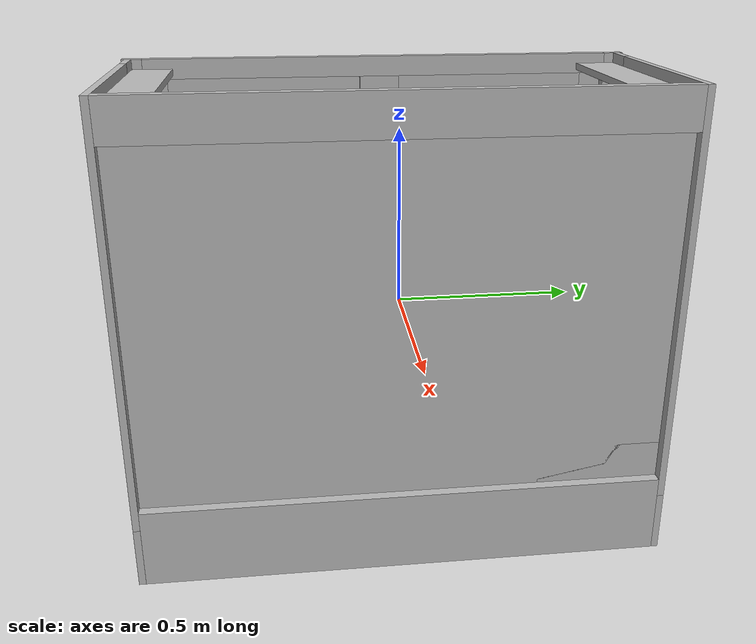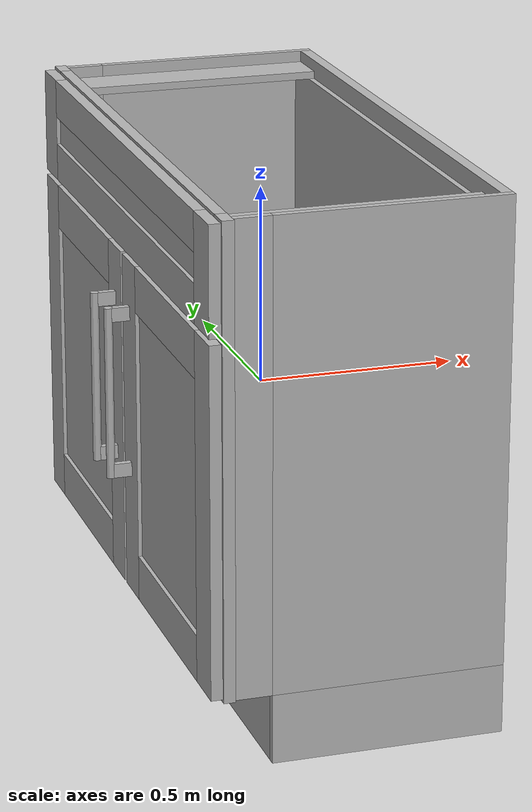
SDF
<sdf version='1.7'>
  <model name='cabinet_0'>
    <link name='link'>
      <inertial>
        <pose>0 0 0 0 -0 0</pose>
        <mass>10</mass>
        <inertia>
          <ixx>1</ixx>
          <ixy>0</ixy>
          <ixz>0</ixz>
          <iyy>1</iyy>
          <iyz>0</iyz>
          <izz>1</izz>
        </inertia>
      </inertial>
      <collision name='link_2_collision'>
        <pose>0 0 0 1.5708 -0 -1.5708</pose>
        <geometry>
          <mesh>
            <scale>1 1 1</scale>
            <uri>file:///home/junting/franka_ws/src/franka_fisher/instruct_to_policy/models/cabinet_0/textured_objs/original-15.obj</uri>
          </mesh>
        </geometry>
      </collision>
      <collision name='link_2_collision_1'>
        <pose>0 0 0 1.5708 -0 -1.5708</pose>
        <geometry>
          <mesh>
            <scale>1 1 1</scale>
            <uri>file:///home/junting/franka_ws/src/franka_fisher/instruct_to_policy/models/cabinet_0/textured_objs/original-14.obj</uri>
          </mesh>
        </geometry>
      </collision>
      <collision name='link_2_collision_2'>
        <pose>0 0 0 1.5708 -0 -1.5708</pose>
        <geometry>
          <mesh>
            <scale>1 1 1</scale>
            <uri>file:///home/junting/franka_ws/src/franka_fisher/instruct_to_policy/models/cabinet_0/textured_objs/original-11.obj</uri>
          </mesh>
        </geometry>
      </collision>
      <collision name='link_2_collision_3'>
        <pose>0 0 0 1.5708 -0 -1.5708</pose>
        <geometry>
          <mesh>
            <scale>1 1 1</scale>
            <uri>file:///home/junting/franka_ws/src/franka_fisher/instruct_to_policy/models/cabinet_0/textured_objs/original-10.obj</uri>
          </mesh>
        </geometry>
      </collision>
      <collision name='link_2_collision_4'>
        <pose>0 0 0 1.5708 -0 -1.5708</pose>
        <geometry>
          <mesh>
            <scale>1 1 1</scale>
            <uri>file:///home/junting/franka_ws/src/franka_fisher/instruct_to_policy/models/cabinet_0/textured_objs/original-5.obj</uri>
          </mesh>
        </geometry>
      </collision>
      <collision name='link_2_collision_5'>
        <pose>0 0 0 1.5708 -0 -1.5708</pose>
        <geometry>
          <mesh>
            <scale>1 1 1</scale>
            <uri>file:///home/junting/franka_ws/src/franka_fisher/instruct_to_policy/models/cabinet_0/textured_objs/original-2.obj</uri>
          </mesh>
        </geometry>
      </collision>
      <collision name='link_2_collision_6'>
        <pose>0 0 0 1.5708 -0 -1.5708</pose>
        <geometry>
          <mesh>
            <scale>1 1 1</scale>
            <uri>file:///home/junting/franka_ws/src/franka_fisher/instruct_to_policy/models/cabinet_0/textured_objs/original-3.obj</uri>
          </mesh>
        </geometry>
      </collision>
      <collision name='link_2_collision_7'>
        <pose>0 0 0 1.5708 -0 -1.5708</pose>
        <geometry>
          <mesh>
            <scale>1 1 1</scale>
            <uri>file:///home/junting/franka_ws/src/franka_fisher/instruct_to_policy/models/cabinet_0/textured_objs/original-7.obj</uri>
          </mesh>
        </geometry>
      </collision>
      <collision name='link_2_collision_8'>
        <pose>0 0 0 1.5708 -0 -1.5708</pose>
        <geometry>
          <mesh>
            <scale>1 1 1</scale>
            <uri>file:///home/junting/franka_ws/src/franka_fisher/instruct_to_policy/models/cabinet_0/textured_objs/original-17.obj</uri>
          </mesh>
        </geometry>
      </collision>
      <collision name='link_2_collision_9'>
        <pose>0 0 0 1.5708 -0 -1.5708</pose>
        <geometry>
          <mesh>
            <scale>1 1 1</scale>
            <uri>file:///home/junting/franka_ws/src/franka_fisher/instruct_to_policy/models/cabinet_0/textured_objs/original-23.obj</uri>
          </mesh>
        </geometry>
      </collision>
      <collision name='link_2_collision_10'>
        <pose>0 0 0 1.5708 -0 -1.5708</pose>
        <geometry>
          <mesh>
            <scale>1 1 1</scale>
            <uri>file:///home/junting/franka_ws/src/franka_fisher/instruct_to_policy/models/cabinet_0/textured_objs/original-21.obj</uri>
          </mesh>
        </geometry>
      </collision>
      <collision name='link_2_collision_11'>
        <pose>0 0 0 1.5708 -0 -1.5708</pose>
        <geometry>
          <mesh>
            <scale>1 1 1</scale>
            <uri>file:///home/junting/franka_ws/src/franka_fisher/instruct_to_policy/models/cabinet_0/textured_objs/original-22.obj</uri>
          </mesh>
        </geometry>
      </collision>
      <collision name='link_2_collision_12'>
        <pose>0 0 0 1.5708 -0 -1.5708</pose>
        <geometry>
          <mesh>
            <scale>1 1 1</scale>
            <uri>file:///home/junting/franka_ws/src/franka_fisher/instruct_to_policy/models/cabinet_0/textured_objs/original-18.obj</uri>
          </mesh>
        </geometry>
      </collision>
      <collision name='link_2_collision_13'>
        <pose>0 0 0 1.5708 -0 -1.5708</pose>
        <geometry>
          <mesh>
            <scale>1 1 1</scale>
            <uri>file:///home/junting/franka_ws/src/franka_fisher/instruct_to_policy/models/cabinet_0/textured_objs/original-4.obj</uri>
          </mesh>
        </geometry>
      </collision>
      <collision name='link_2_collision_14'>
        <pose>0 0 0 1.5708 -0 -1.5708</pose>
        <geometry>
          <mesh>
            <scale>1 1 1</scale>
            <uri>file:///home/junting/franka_ws/src/franka_fisher/instruct_to_policy/models/cabinet_0/textured_objs/original-6.obj</uri>
          </mesh>
        </geometry>
      </collision>
      <collision name='link_2_collision_15'>
        <pose>0 0 0 1.5708 -0 -1.5708</pose>
        <geometry>
          <mesh>
            <scale>1 1 1</scale>
            <uri>file:///home/junting/franka_ws/src/franka_fisher/instruct_to_policy/models/cabinet_0/textured_objs/original-56.obj</uri>
          </mesh>
        </geometry>
      </collision>
      <collision name='link_2_collision_16'>
        <pose>0 0 0 1.5708 -0 -1.5708</pose>
        <geometry>
          <mesh>
            <scale>1 1 1</scale>
            <uri>file:///home/junting/franka_ws/src/franka_fisher/instruct_to_policy/models/cabinet_0/textured_objs/original-8.obj</uri>
          </mesh>
        </geometry>
      </collision>
      <collision name='link_2_collision_17'>
        <pose>0 0 0 1.5708 -0 -1.5708</pose>
        <geometry>
          <mesh>
            <scale>1 1 1</scale>
            <uri>file:///home/junting/franka_ws/src/franka_fisher/instruct_to_policy/models/cabinet_0/textured_objs/original-31.obj</uri>
          </mesh>
        </geometry>
      </collision>
      <collision name='link_2_collision_18'>
        <pose>0 0 0 1.5708 -0 -1.5708</pose>
        <geometry>
          <mesh>
            <scale>1 1 1</scale>
            <uri>file:///home/junting/franka_ws/src/franka_fisher/instruct_to_policy/models/cabinet_0/textured_objs/original-27.obj</uri>
          </mesh>
        </geometry>
      </collision>
      <collision name='link_2_collision_19'>
        <pose>0 0 0 1.5708 -0 -1.5708</pose>
        <geometry>
          <mesh>
            <scale>1 1 1</scale>
            <uri>file:///home/junting/franka_ws/src/franka_fisher/instruct_to_policy/models/cabinet_0/textured_objs/original-26.obj</uri>
          </mesh>
        </geometry>
      </collision>
      <collision name='link_2_collision_20'>
        <pose>0 0 0 1.5708 -0 -1.5708</pose>
        <geometry>
          <mesh>
            <scale>1 1 1</scale>
            <uri>file:///home/junting/franka_ws/src/franka_fisher/instruct_to_policy/models/cabinet_0/textured_objs/original-25.obj</uri>
          </mesh>
        </geometry>
      </collision>
      <collision name='link_2_collision_21'>
        <pose>0 0 0 1.5708 -0 -1.5708</pose>
        <geometry>
          <mesh>
            <scale>1 1 1</scale>
            <uri>file:///home/junting/franka_ws/src/franka_fisher/instruct_to_policy/models/cabinet_0/textured_objs/original-28.obj</uri>
          </mesh>
        </geometry>
      </collision>
      <collision name='link_2_collision_22'>
        <pose>0 0 0 1.5708 -0 -1.5708</pose>
        <geometry>
          <mesh>
            <scale>1 1 1</scale>
            <uri>file:///home/junting/franka_ws/src/franka_fisher/instruct_to_policy/models/cabinet_0/textured_objs/original-30.obj</uri>
          </mesh>
        </geometry>
      </collision>
      <collision name='link_2_collision_23'>
        <pose>0 0 0 1.5708 -0 -1.5708</pose>
        <geometry>
          <mesh>
            <scale>1 1 1</scale>
            <uri>file:///home/junting/franka_ws/src/franka_fisher/instruct_to_policy/models/cabinet_0/textured_objs/original-16.obj</uri>
          </mesh>
        </geometry>
      </collision>
      <collision name='link_2_collision_24'>
        <pose>0 0 0 1.5708 -0 -1.5708</pose>
        <geometry>
          <mesh>
            <scale>1 1 1</scale>
            <uri>file:///home/junting/franka_ws/src/franka_fisher/instruct_to_policy/models/cabinet_0/textured_objs/original-19.obj</uri>
          </mesh>
        </geometry>
      </collision>
      <collision name='link_2_collision_25'>
        <pose>0 0 0 1.5708 -0 -1.5708</pose>
        <geometry>
          <mesh>
            <scale>1 1 1</scale>
            <uri>file:///home/junting/franka_ws/src/franka_fisher/instruct_to_policy/models/cabinet_0/textured_objs/original-12.obj</uri>
          </mesh>
        </geometry>
      </collision>
      <collision name='link_2_collision_26'>
        <pose>0 0 0 1.5708 -0 -1.5708</pose>
        <geometry>
          <mesh>
            <scale>1 1 1</scale>
            <uri>file:///home/junting/franka_ws/src/franka_fisher/instruct_to_policy/models/cabinet_0/textured_objs/original-20.obj</uri>
          </mesh>
        </geometry>
      </collision>
      <visual name='link_fixed_joint_lump__vertical_side_panel-18_visual'>
        <pose>0 0 0 1.5708 -0 -1.5708</pose>
        <geometry>
          <mesh>
            <scale>1 1 1</scale>
            <uri>file:///home/junting/franka_ws/src/franka_fisher/instruct_to_policy/models/cabinet_0/textured_objs/original-15.obj</uri>
          </mesh>
        </geometry>
      </visual>
      <visual name='link_fixed_joint_lump__vertical_side_panel-18_visual_1'>
        <pose>0 0 0 1.5708 -0 -1.5708</pose>
        <geometry>
          <mesh>
            <scale>1 1 1</scale>
            <uri>file:///home/junting/franka_ws/src/franka_fisher/instruct_to_policy/models/cabinet_0/textured_objs/original-14.obj</uri>
          </mesh>
        </geometry>
      </visual>
      <visual name='link_fixed_joint_lump__vertical_side_panel-19_visual_2'>
        <pose>0 0 0 1.5708 -0 -1.5708</pose>
        <geometry>
          <mesh>
            <scale>1 1 1</scale>
            <uri>file:///home/junting/franka_ws/src/franka_fisher/instruct_to_policy/models/cabinet_0/textured_objs/original-11.obj</uri>
          </mesh>
        </geometry>
      </visual>
      <visual name='link_fixed_joint_lump__vertical_side_panel-19_visual_3'>
        <pose>0 0 0 1.5708 -0 -1.5708</pose>
        <geometry>
          <mesh>
            <scale>1 1 1</scale>
            <uri>file:///home/junting/franka_ws/src/franka_fisher/instruct_to_policy/models/cabinet_0/textured_objs/original-10.obj</uri>
          </mesh>
        </geometry>
      </visual>
      <visual name='link_fixed_joint_lump__back_panel-20_visual_4'>
        <pose>0 0 0 1.5708 -0 -1.5708</pose>
        <geometry>
          <mesh>
            <scale>1 1 1</scale>
            <uri>file:///home/junting/franka_ws/src/franka_fisher/instruct_to_policy/models/cabinet_0/textured_objs/original-5.obj</uri>
          </mesh>
        </geometry>
      </visual>
      <visual name='link_fixed_joint_lump__bottom_panel-21_visual_5'>
        <pose>0 0 0 1.5708 -0 -1.5708</pose>
        <geometry>
          <mesh>
            <scale>1 1 1</scale>
            <uri>file:///home/junting/franka_ws/src/franka_fisher/instruct_to_policy/models/cabinet_0/textured_objs/original-2.obj</uri>
          </mesh>
        </geometry>
      </visual>
      <visual name='link_fixed_joint_lump__frame_vertical_bar-22_visual_6'>
        <pose>0 0 0 1.5708 -0 -1.5708</pose>
        <geometry>
          <mesh>
            <scale>1 1 1</scale>
            <uri>file:///home/junting/franka_ws/src/franka_fisher/instruct_to_policy/models/cabinet_0/textured_objs/original-3.obj</uri>
          </mesh>
        </geometry>
      </visual>
      <visual name='link_fixed_joint_lump__frame_vertical_bar-23_visual_7'>
        <pose>0 0 0 1.5708 -0 -1.5708</pose>
        <geometry>
          <mesh>
            <scale>1 1 1</scale>
            <uri>file:///home/junting/franka_ws/src/franka_fisher/instruct_to_policy/models/cabinet_0/textured_objs/original-7.obj</uri>
          </mesh>
        </geometry>
      </visual>
      <visual name='link_fixed_joint_lump__frame_vertical_bar-24_visual_8'>
        <pose>0 0 0 1.5708 -0 -1.5708</pose>
        <geometry>
          <mesh>
            <scale>1 1 1</scale>
            <uri>file:///home/junting/franka_ws/src/franka_fisher/instruct_to_policy/models/cabinet_0/textured_objs/original-17.obj</uri>
          </mesh>
        </geometry>
      </visual>
      <visual name='link_fixed_joint_lump__frame_vertical_bar-24_visual_9'>
        <pose>0 0 0 1.5708 -0 -1.5708</pose>
        <geometry>
          <mesh>
            <scale>1 1 1</scale>
            <uri>file:///home/junting/franka_ws/src/franka_fisher/instruct_to_policy/models/cabinet_0/textured_objs/original-23.obj</uri>
          </mesh>
        </geometry>
      </visual>
      <visual name='link_fixed_joint_lump__frame_horizontal_bar-25_visual_10'>
        <pose>0 0 0 1.5708 -0 -1.5708</pose>
        <geometry>
          <mesh>
            <scale>1 1 1</scale>
            <uri>file:///home/junting/franka_ws/src/franka_fisher/instruct_to_policy/models/cabinet_0/textured_objs/original-21.obj</uri>
          </mesh>
        </geometry>
      </visual>
      <visual name='link_fixed_joint_lump__frame_horizontal_bar-26_visual_11'>
        <pose>0 0 0 1.5708 -0 -1.5708</pose>
        <geometry>
          <mesh>
            <scale>1 1 1</scale>
            <uri>file:///home/junting/franka_ws/src/franka_fisher/instruct_to_policy/models/cabinet_0/textured_objs/original-22.obj</uri>
          </mesh>
        </geometry>
      </visual>
      <visual name='link_fixed_joint_lump__frame_horizontal_bar-27_visual_12'>
        <pose>0 0 0 1.5708 -0 -1.5708</pose>
        <geometry>
          <mesh>
            <scale>1 1 1</scale>
            <uri>file:///home/junting/franka_ws/src/franka_fisher/instruct_to_policy/models/cabinet_0/textured_objs/original-18.obj</uri>
          </mesh>
        </geometry>
      </visual>
      <visual name='link_fixed_joint_lump__frame_horizontal_bar-28_visual_13'>
        <pose>0 0 0 1.5708 -0 -1.5708</pose>
        <geometry>
          <mesh>
            <scale>1 1 1</scale>
            <uri>file:///home/junting/franka_ws/src/franka_fisher/instruct_to_policy/models/cabinet_0/textured_objs/original-4.obj</uri>
          </mesh>
        </geometry>
      </visual>
      <visual name='link_fixed_joint_lump__frame_horizontal_bar-29_visual_14'>
        <pose>0 0 0 1.5708 -0 -1.5708</pose>
        <geometry>
          <mesh>
            <scale>1 1 1</scale>
            <uri>file:///home/junting/franka_ws/src/franka_fisher/instruct_to_policy/models/cabinet_0/textured_objs/original-6.obj</uri>
          </mesh>
        </geometry>
      </visual>
      <visual name='link_fixed_joint_lump__other_leaf-31_visual_15'>
        <pose>0 0 0 1.5708 -0 -1.5708</pose>
        <geometry>
          <mesh>
            <scale>1 1 1</scale>
            <uri>file:///home/junting/franka_ws/src/franka_fisher/instruct_to_policy/models/cabinet_0/textured_objs/original-56.obj</uri>
          </mesh>
        </geometry>
      </visual>
      <visual name='link_fixed_joint_lump__frame_horizontal_bar-32_visual_16'>
        <pose>0 0 0 1.5708 -0 -1.5708</pose>
        <geometry>
          <mesh>
            <scale>1 1 1</scale>
            <uri>file:///home/junting/franka_ws/src/franka_fisher/instruct_to_policy/models/cabinet_0/textured_objs/original-8.obj</uri>
          </mesh>
        </geometry>
      </visual>
      <visual name='link_fixed_joint_lump__vertical_front_panel-33_visual_17'>
        <pose>0 0 0 1.5708 -0 -1.5708</pose>
        <geometry>
          <mesh>
            <scale>1 1 1</scale>
            <uri>file:///home/junting/franka_ws/src/franka_fisher/instruct_to_policy/models/cabinet_0/textured_objs/original-31.obj</uri>
          </mesh>
        </geometry>
      </visual>
      <visual name='link_fixed_joint_lump__vertical_front_panel-33_visual_18'>
        <pose>0 0 0 1.5708 -0 -1.5708</pose>
        <geometry>
          <mesh>
            <scale>1 1 1</scale>
            <uri>file:///home/junting/franka_ws/src/franka_fisher/instruct_to_policy/models/cabinet_0/textured_objs/original-27.obj</uri>
          </mesh>
        </geometry>
      </visual>
      <visual name='link_fixed_joint_lump__vertical_front_panel-33_visual_19'>
        <pose>0 0 0 1.5708 -0 -1.5708</pose>
        <geometry>
          <mesh>
            <scale>1 1 1</scale>
            <uri>file:///home/junting/franka_ws/src/franka_fisher/instruct_to_policy/models/cabinet_0/textured_objs/original-26.obj</uri>
          </mesh>
        </geometry>
      </visual>
      <visual name='link_fixed_joint_lump__vertical_front_panel-33_visual_20'>
        <pose>0 0 0 1.5708 -0 -1.5708</pose>
        <geometry>
          <mesh>
            <scale>1 1 1</scale>
            <uri>file:///home/junting/franka_ws/src/franka_fisher/instruct_to_policy/models/cabinet_0/textured_objs/original-25.obj</uri>
          </mesh>
        </geometry>
      </visual>
      <visual name='link_fixed_joint_lump__vertical_front_panel-33_visual_21'>
        <pose>0 0 0 1.5708 -0 -1.5708</pose>
        <geometry>
          <mesh>
            <scale>1 1 1</scale>
            <uri>file:///home/junting/franka_ws/src/franka_fisher/instruct_to_policy/models/cabinet_0/textured_objs/original-28.obj</uri>
          </mesh>
        </geometry>
      </visual>
      <visual name='link_fixed_joint_lump__vertical_front_panel-33_visual_22'>
        <pose>0 0 0 1.5708 -0 -1.5708</pose>
        <geometry>
          <mesh>
            <scale>1 1 1</scale>
            <uri>file:///home/junting/franka_ws/src/franka_fisher/instruct_to_policy/models/cabinet_0/textured_objs/original-30.obj</uri>
          </mesh>
        </geometry>
      </visual>
      <visual name='link_fixed_joint_lump__base_side_panel-14_visual_23'>
        <pose>0 0 0 1.5708 -0 -1.5708</pose>
        <geometry>
          <mesh>
            <scale>1 1 1</scale>
            <uri>file:///home/junting/franka_ws/src/franka_fisher/instruct_to_policy/models/cabinet_0/textured_objs/original-16.obj</uri>
          </mesh>
        </geometry>
      </visual>
      <visual name='link_fixed_joint_lump__base_side_panel-15_visual_24'>
        <pose>0 0 0 1.5708 -0 -1.5708</pose>
        <geometry>
          <mesh>
            <scale>1 1 1</scale>
            <uri>file:///home/junting/franka_ws/src/franka_fisher/instruct_to_policy/models/cabinet_0/textured_objs/original-19.obj</uri>
          </mesh>
        </geometry>
      </visual>
      <visual name='link_fixed_joint_lump__base_side_panel-16_visual_25'>
        <pose>0 0 0 1.5708 -0 -1.5708</pose>
        <geometry>
          <mesh>
            <scale>1 1 1</scale>
            <uri>file:///home/junting/franka_ws/src/franka_fisher/instruct_to_policy/models/cabinet_0/textured_objs/original-12.obj</uri>
          </mesh>
        </geometry>
      </visual>
      <visual name='link_fixed_joint_lump__base_side_panel-17_visual_26'>
        <pose>0 0 0 1.5708 -0 -1.5708</pose>
        <geometry>
          <mesh>
            <scale>1 1 1</scale>
            <uri>file:///home/junting/franka_ws/src/franka_fisher/instruct_to_policy/models/cabinet_0/textured_objs/original-20.obj</uri>
          </mesh>
        </geometry>
      </visual>
    </link>
    <joint name='joint_0' type='revolute'>
      <pose relative_to='link'>-0.330815 -0.762887 0.628714 1.5708 -0 -1.5708</pose>
      <parent>link</parent>
      <child>link_0</child>
      <axis>
        <xyz>0 1 0</xyz>
        <limit>
          <lower>0</lower>
          <upper>2.0944</upper>
          <effort>1000</effort>
          <velocity>0.5</velocity>
        </limit>
        <dynamics>
          <spring_reference>0</spring_reference>
          <spring_stiffness>0</spring_stiffness>
        </dynamics>
      </axis>
    </joint>
    <link name='link_0'>
      <pose relative_to='joint_0'>0 0 0 0 -0 0</pose>
      <inertial>
        <pose>0 0 0 0 -0 0</pose>
        <mass>3</mass>
        <inertia>
          <ixx>1</ixx>
          <ixy>0</ixy>
          <ixz>0</ixz>
          <iyy>1</iyy>
          <iyz>0</iyz>
          <izz>1</izz>
        </inertia>
      </inertial>
      <collision name='link_0_collision'>
        <pose>-0.762887 -0.628714 -0.330815 0 -0 0</pose>
        <geometry>
          <mesh>
            <scale>1 1 1</scale>
            <uri>file:///home/junting/franka_ws/src/franka_fisher/instruct_to_policy/models/cabinet_0/textured_objs/original-50.obj</uri>
          </mesh>
        </geometry>
      </collision>
      <collision name='link_0_collision_1'>
        <pose>-0.762887 -0.628714 -0.330815 0 -0 0</pose>
        <geometry>
          <mesh>
            <scale>1 1 1</scale>
            <uri>file:///home/junting/franka_ws/src/franka_fisher/instruct_to_policy/models/cabinet_0/textured_objs/original-45.obj</uri>
          </mesh>
        </geometry>
      </collision>
      <collision name='link_0_collision_2'>
        <pose>-0.762887 -0.628714 -0.330815 0 -0 0</pose>
        <geometry>
          <mesh>
            <scale>1 1 1</scale>
            <uri>file:///home/junting/franka_ws/src/franka_fisher/instruct_to_policy/models/cabinet_0/textured_objs/original-47.obj</uri>
          </mesh>
        </geometry>
      </collision>
      <collision name='link_0_collision_3'>
        <pose>-0.762887 -0.628714 -0.330815 0 -0 0</pose>
        <geometry>
          <mesh>
            <scale>1 1 1</scale>
            <uri>file:///home/junting/franka_ws/src/franka_fisher/instruct_to_policy/models/cabinet_0/textured_objs/original-46.obj</uri>
          </mesh>
        </geometry>
      </collision>
      <collision name='link_0_collision_4'>
        <pose>-0.762887 -0.628714 -0.330815 0 -0 0</pose>
        <geometry>
          <mesh>
            <scale>1 1 1</scale>
            <uri>file:///home/junting/franka_ws/src/franka_fisher/instruct_to_policy/models/cabinet_0/textured_objs/original-48.obj</uri>
          </mesh>
        </geometry>
      </collision>
      <collision name='link_0_collision_5'>
        <pose>-0.762887 -0.628714 -0.330815 0 -0 0</pose>
        <geometry>
          <mesh>
            <scale>1 1 1</scale>
            <uri>file:///home/junting/franka_ws/src/franka_fisher/instruct_to_policy/models/cabinet_0/textured_objs/original-51.obj</uri>
          </mesh>
        </geometry>
      </collision>
      <collision name='link_0_collision_6'>
        <pose>-0.762887 -0.628714 -0.330815 0 -0 0</pose>
        <geometry>
          <mesh>
            <scale>1 1 1</scale>
            <uri>file:///home/junting/franka_ws/src/franka_fisher/instruct_to_policy/models/cabinet_0/textured_objs/original-53.obj</uri>
          </mesh>
        </geometry>
      </collision>
      <collision name='link_0_collision_7'>
        <pose>-0.762887 -0.628714 -0.330815 0 -0 0</pose>
        <geometry>
          <mesh>
            <scale>1 1 1</scale>
            <uri>file:///home/junting/franka_ws/src/franka_fisher/instruct_to_policy/models/cabinet_0/textured_objs/original-55.obj</uri>
          </mesh>
        </geometry>
      </collision>
      <collision name='link_0_collision_8'>
        <pose>-0.762887 -0.628714 -0.330815 0 -0 0</pose>
        <geometry>
          <mesh>
            <scale>1 1 1</scale>
            <uri>file:///home/junting/franka_ws/src/franka_fisher/instruct_to_policy/models/cabinet_0/textured_objs/original-54.obj</uri>
          </mesh>
        </geometry>
      </collision>
      <visual name='link_0_fixed_joint_lump__cabinet_door_surface-11_visual'>
        <pose>-0.762887 -0.628714 -0.330815 0 -0 0</pose>
        <geometry>
          <mesh>
            <scale>1 1 1</scale>
            <uri>file:///home/junting/franka_ws/src/franka_fisher/instruct_to_policy/models/cabinet_0/textured_objs/original-50.obj</uri>
          </mesh>
        </geometry>
      </visual>
      <visual name='link_0_fixed_joint_lump__cabinet_door_surface-11_visual_1'>
        <pose>-0.762887 -0.628714 -0.330815 0 -0 0</pose>
        <geometry>
          <mesh>
            <scale>1 1 1</scale>
            <uri>file:///home/junting/franka_ws/src/franka_fisher/instruct_to_policy/models/cabinet_0/textured_objs/original-45.obj</uri>
          </mesh>
        </geometry>
      </visual>
      <visual name='link_0_fixed_joint_lump__cabinet_door_surface-11_visual_2'>
        <pose>-0.762887 -0.628714 -0.330815 0 -0 0</pose>
        <geometry>
          <mesh>
            <scale>1 1 1</scale>
            <uri>file:///home/junting/franka_ws/src/franka_fisher/instruct_to_policy/models/cabinet_0/textured_objs/original-47.obj</uri>
          </mesh>
        </geometry>
      </visual>
      <visual name='link_0_fixed_joint_lump__cabinet_door_surface-11_visual_3'>
        <pose>-0.762887 -0.628714 -0.330815 0 -0 0</pose>
        <geometry>
          <mesh>
            <scale>1 1 1</scale>
            <uri>file:///home/junting/franka_ws/src/franka_fisher/instruct_to_policy/models/cabinet_0/textured_objs/original-46.obj</uri>
          </mesh>
        </geometry>
      </visual>
      <visual name='link_0_fixed_joint_lump__cabinet_door_surface-11_visual_4'>
        <pose>-0.762887 -0.628714 -0.330815 0 -0 0</pose>
        <geometry>
          <mesh>
            <scale>1 1 1</scale>
            <uri>file:///home/junting/franka_ws/src/franka_fisher/instruct_to_policy/models/cabinet_0/textured_objs/original-48.obj</uri>
          </mesh>
        </geometry>
      </visual>
      <visual name='link_0_fixed_joint_lump__cabinet_door_surface-11_visual_5'>
        <pose>-0.762887 -0.628714 -0.330815 0 -0 0</pose>
        <geometry>
          <mesh>
            <scale>1 1 1</scale>
            <uri>file:///home/junting/franka_ws/src/franka_fisher/instruct_to_policy/models/cabinet_0/textured_objs/original-51.obj</uri>
          </mesh>
        </geometry>
      </visual>
      <visual name='link_0_fixed_joint_lump__handle-12_visual_6'>
        <pose>-0.762887 -0.628714 -0.330815 0 -0 0</pose>
        <geometry>
          <mesh>
            <scale>1 1 1</scale>
            <uri>file:///home/junting/franka_ws/src/franka_fisher/instruct_to_policy/models/cabinet_0/textured_objs/original-53.obj</uri>
          </mesh>
        </geometry>
      </visual>
      <visual name='link_0_fixed_joint_lump__handle-12_visual_7'>
        <pose>-0.762887 -0.628714 -0.330815 0 -0 0</pose>
        <geometry>
          <mesh>
            <scale>1 1 1</scale>
            <uri>file:///home/junting/franka_ws/src/franka_fisher/instruct_to_policy/models/cabinet_0/textured_objs/original-55.obj</uri>
          </mesh>
        </geometry>
      </visual>
      <visual name='link_0_fixed_joint_lump__handle-12_visual_8'>
        <pose>-0.762887 -0.628714 -0.330815 0 -0 0</pose>
        <geometry>
          <mesh>
            <scale>1 1 1</scale>
            <uri>file:///home/junting/franka_ws/src/franka_fisher/instruct_to_policy/models/cabinet_0/textured_objs/original-54.obj</uri>
          </mesh>
        </geometry>
      </visual>
    </link>
    <joint name='joint_1' type='revolute'>
      <pose relative_to='link'>-0.33207 0.719878 0.650261 1.5708 -0 -1.5708</pose>
      <parent>link</parent>
      <child>link_1</child>
      <axis>
        <xyz>0 -1 0</xyz>
        <limit>
          <lower>0</lower>
          <upper>2.0944</upper>
          <effort>1000</effort>
          <velocity>0.5</velocity>
        </limit>
        <dynamics>
          <spring_reference>0</spring_reference>
          <spring_stiffness>0</spring_stiffness>
        </dynamics>
      </axis>
    </joint>
    <link name='link_1'>
      <pose relative_to='joint_1'>0 0 0 0 -0 0</pose>
      <inertial>
        <pose>0 0 0 0 -0 0</pose>
        <mass>3</mass>
        <inertia>
          <ixx>1</ixx>
          <ixy>0</ixy>
          <ixz>0</ixz>
          <iyy>1</iyy>
          <iyz>0</iyz>
          <izz>1</izz>
        </inertia>
      </inertial>
      <collision name='link_1_collision'>
        <pose>0.719878 -0.650261 -0.33207 0 -0 0</pose>
        <geometry>
          <mesh>
            <scale>1 1 1</scale>
            <uri>file:///home/junting/franka_ws/src/franka_fisher/instruct_to_policy/models/cabinet_0/textured_objs/original-34.obj</uri>
          </mesh>
        </geometry>
      </collision>
      <collision name='link_1_collision_1'>
        <pose>0.719878 -0.650261 -0.33207 0 -0 0</pose>
        <geometry>
          <mesh>
            <scale>1 1 1</scale>
            <uri>file:///home/junting/franka_ws/src/franka_fisher/instruct_to_policy/models/cabinet_0/textured_objs/original-39.obj</uri>
          </mesh>
        </geometry>
      </collision>
      <collision name='link_1_collision_2'>
        <pose>0.719878 -0.650261 -0.33207 0 -0 0</pose>
        <geometry>
          <mesh>
            <scale>1 1 1</scale>
            <uri>file:///home/junting/franka_ws/src/franka_fisher/instruct_to_policy/models/cabinet_0/textured_objs/original-33.obj</uri>
          </mesh>
        </geometry>
      </collision>
      <collision name='link_1_collision_3'>
        <pose>0.719878 -0.650261 -0.33207 0 -0 0</pose>
        <geometry>
          <mesh>
            <scale>1 1 1</scale>
            <uri>file:///home/junting/franka_ws/src/franka_fisher/instruct_to_policy/models/cabinet_0/textured_objs/original-36.obj</uri>
          </mesh>
        </geometry>
      </collision>
      <collision name='link_1_collision_4'>
        <pose>0.719878 -0.650261 -0.33207 0 -0 0</pose>
        <geometry>
          <mesh>
            <scale>1 1 1</scale>
            <uri>file:///home/junting/franka_ws/src/franka_fisher/instruct_to_policy/models/cabinet_0/textured_objs/original-35.obj</uri>
          </mesh>
        </geometry>
      </collision>
      <collision name='link_1_collision_5'>
        <pose>0.719878 -0.650261 -0.33207 0 -0 0</pose>
        <geometry>
          <mesh>
            <scale>1 1 1</scale>
            <uri>file:///home/junting/franka_ws/src/franka_fisher/instruct_to_policy/models/cabinet_0/textured_objs/original-38.obj</uri>
          </mesh>
        </geometry>
      </collision>
      <collision name='link_1_collision_6'>
        <pose>0.719878 -0.650261 -0.33207 0 -0 0</pose>
        <geometry>
          <mesh>
            <scale>1 1 1</scale>
            <uri>file:///home/junting/franka_ws/src/franka_fisher/instruct_to_policy/models/cabinet_0/textured_objs/original-41.obj</uri>
          </mesh>
        </geometry>
      </collision>
      <collision name='link_1_collision_7'>
        <pose>0.719878 -0.650261 -0.33207 0 -0 0</pose>
        <geometry>
          <mesh>
            <scale>1 1 1</scale>
            <uri>file:///home/junting/franka_ws/src/franka_fisher/instruct_to_policy/models/cabinet_0/textured_objs/original-43.obj</uri>
          </mesh>
        </geometry>
      </collision>
      <collision name='link_1_collision_8'>
        <pose>0.719878 -0.650261 -0.33207 0 -0 0</pose>
        <geometry>
          <mesh>
            <scale>1 1 1</scale>
            <uri>file:///home/junting/franka_ws/src/franka_fisher/instruct_to_policy/models/cabinet_0/textured_objs/original-42.obj</uri>
          </mesh>
        </geometry>
      </collision>
      <visual name='link_1_fixed_joint_lump__cabinet_door_surface-9_visual'>
        <pose>0.719878 -0.650261 -0.33207 0 -0 0</pose>
        <geometry>
          <mesh>
            <scale>1 1 1</scale>
            <uri>file:///home/junting/franka_ws/src/franka_fisher/instruct_to_policy/models/cabinet_0/textured_objs/original-34.obj</uri>
          </mesh>
        </geometry>
      </visual>
      <visual name='link_1_fixed_joint_lump__cabinet_door_surface-9_visual_1'>
        <pose>0.719878 -0.650261 -0.33207 0 -0 0</pose>
        <geometry>
          <mesh>
            <scale>1 1 1</scale>
            <uri>file:///home/junting/franka_ws/src/franka_fisher/instruct_to_policy/models/cabinet_0/textured_objs/original-39.obj</uri>
          </mesh>
        </geometry>
      </visual>
      <visual name='link_1_fixed_joint_lump__cabinet_door_surface-9_visual_2'>
        <pose>0.719878 -0.650261 -0.33207 0 -0 0</pose>
        <geometry>
          <mesh>
            <scale>1 1 1</scale>
            <uri>file:///home/junting/franka_ws/src/franka_fisher/instruct_to_policy/models/cabinet_0/textured_objs/original-33.obj</uri>
          </mesh>
        </geometry>
      </visual>
      <visual name='link_1_fixed_joint_lump__cabinet_door_surface-9_visual_3'>
        <pose>0.719878 -0.650261 -0.33207 0 -0 0</pose>
        <geometry>
          <mesh>
            <scale>1 1 1</scale>
            <uri>file:///home/junting/franka_ws/src/franka_fisher/instruct_to_policy/models/cabinet_0/textured_objs/original-36.obj</uri>
          </mesh>
        </geometry>
      </visual>
      <visual name='link_1_fixed_joint_lump__cabinet_door_surface-9_visual_4'>
        <pose>0.719878 -0.650261 -0.33207 0 -0 0</pose>
        <geometry>
          <mesh>
            <scale>1 1 1</scale>
            <uri>file:///home/junting/franka_ws/src/franka_fisher/instruct_to_policy/models/cabinet_0/textured_objs/original-35.obj</uri>
          </mesh>
        </geometry>
      </visual>
      <visual name='link_1_fixed_joint_lump__cabinet_door_surface-9_visual_5'>
        <pose>0.719878 -0.650261 -0.33207 0 -0 0</pose>
        <geometry>
          <mesh>
            <scale>1 1 1</scale>
            <uri>file:///home/junting/franka_ws/src/franka_fisher/instruct_to_policy/models/cabinet_0/textured_objs/original-38.obj</uri>
          </mesh>
        </geometry>
      </visual>
      <visual name='link_1_fixed_joint_lump__handle-10_visual_6'>
        <pose>0.719878 -0.650261 -0.33207 0 -0 0</pose>
        <geometry>
          <mesh>
            <scale>1 1 1</scale>
            <uri>file:///home/junting/franka_ws/src/franka_fisher/instruct_to_policy/models/cabinet_0/textured_objs/original-41.obj</uri>
          </mesh>
        </geometry>
      </visual>
      <visual name='link_1_fixed_joint_lump__handle-10_visual_7'>
        <pose>0.719878 -0.650261 -0.33207 0 -0 0</pose>
        <geometry>
          <mesh>
            <scale>1 1 1</scale>
            <uri>file:///home/junting/franka_ws/src/franka_fisher/instruct_to_policy/models/cabinet_0/textured_objs/original-43.obj</uri>
          </mesh>
        </geometry>
      </visual>
      <visual name='link_1_fixed_joint_lump__handle-10_visual_8'>
        <pose>0.719878 -0.650261 -0.33207 0 -0 0</pose>
        <geometry>
          <mesh>
            <scale>1 1 1</scale>
            <uri>file:///home/junting/franka_ws/src/franka_fisher/instruct_to_policy/models/cabinet_0/textured_objs/original-42.obj</uri>
          </mesh>
        </geometry>
      </visual>
    </link>
  </model>
</sdf>
